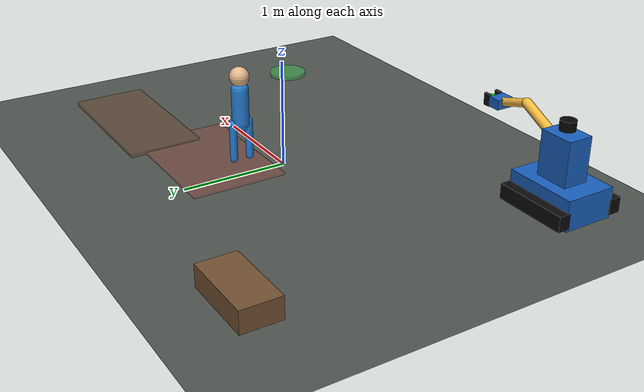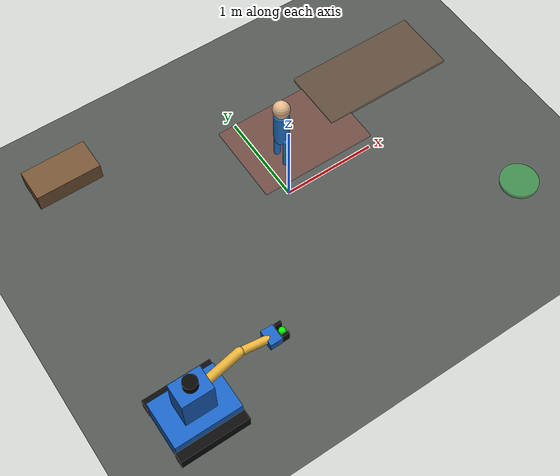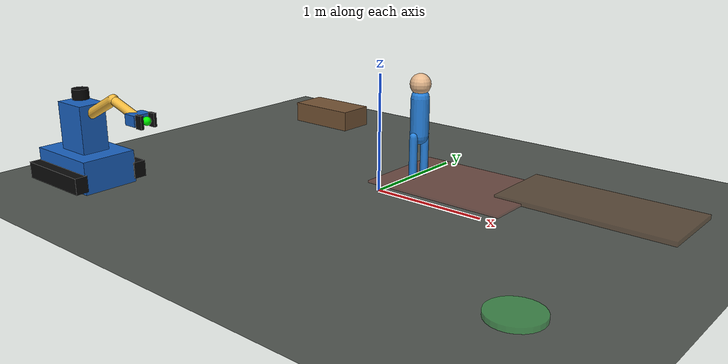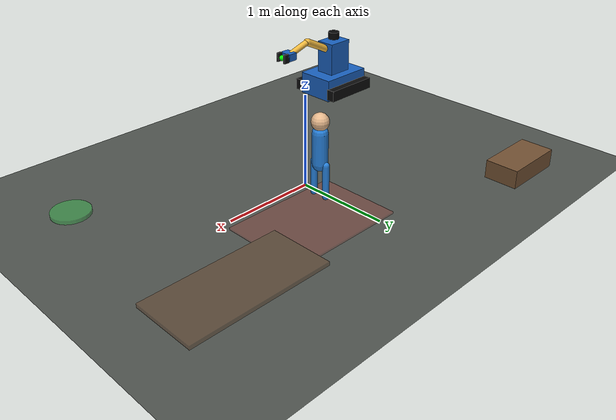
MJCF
<mujoco model="construction_site_mobile_manipulator">
  <option timestep="0.02" gravity="0 0 -9.81" integrator="RK4"/>
  <visual>
    <global azimuth="135" elevation="-25" offwidth="1280" offheight="720"/>
  </visual>
  <compiler angle="radian"/>
  <default>
    <geom friction="1.0 0.08 0.02" solref="0.01 1"/>
    <joint damping="1.5" armature="0.03"/>
  </default>
  <asset>
    <texture name="grid" type="2d" builtin="checker" rgb1="0.28 0.30 0.28" rgb2="0.34 0.36 0.34" width="512" height="512"/>
    <material name="floor_mat" texture="grid" texrepeat="8 8" reflectance="0.05"/>
    <material name="robot_mat" rgba="0.1 0.38 0.75 1"/>
    <material name="cargo_mat" rgba="0.85 0.55 0.18 1"/>
    <material name="human_zone_mat" rgba="0.85 0.18 0.12 0.22"/>
    <material name="arm_mat" rgba="0.94 0.72 0.24 1"/>
    <material name="rubber_mat" rgba="0.04 0.04 0.04 1"/>
    <material name="human_mat" rgba="0.15 0.5 0.85 1"/>
  </asset>

  <worldbody>
    <geom name="floor" type="plane" size="4 4 0.1" material="floor_mat"/>
    <light name="key" pos="0 -3 5" dir="0 0 -1" diffuse="0.8 0.8 0.8"/>
    <camera name="site_overview" pos="0 -5 3.2" xyaxes="1 0 0 0 0.55 0.83"/>

    <body name="robot" pos="-2 -1.5 0.18">
      <freejoint name="robot_free"/>
      <geom name="mobile_base" type="box" size="0.34 0.24 0.14" material="robot_mat" mass="18"/>
      <geom name="left_track" type="box" pos="0 0.28 -0.04" size="0.35 0.055 0.07" material="rubber_mat" mass="2"/>
      <geom name="right_track" type="box" pos="0 -0.28 -0.04" size="0.35 0.055 0.07" material="rubber_mat" mass="2"/>
      <geom name="torso" type="box" pos="0 0 0.33" size="0.16 0.12 0.22" material="robot_mat" mass="8"/>
      <geom name="head_lidar" type="cylinder" pos="0 0 0.62" size="0.07 0.045" rgba="0.02 0.02 0.02 1" mass="1"/>
      <site name="robot_goal" pos="0 0 0.35" size="0.04" rgba="0.1 0.9 0.25 1"/>

      <body name="boom" pos="0.12 0 0.46">
        <joint name="shoulder" type="hinge" axis="0 1 0" range="-1.1 1.0" limited="true"/>
        <geom name="upper_arm" type="capsule" fromto="0 0 0 0.36 0 0.18" size="0.045" material="arm_mat" mass="3"/>
        <body name="forearm" pos="0.36 0 0.18">
          <joint name="elbow" type="hinge" axis="0 1 0" range="-1.8 0.5" limited="true"/>
          <geom name="lower_arm" type="capsule" fromto="0 0 0 0.32 0 -0.1" size="0.038" material="arm_mat" mass="2"/>
          <body name="wrist" pos="0.32 0 -0.1">
            <joint name="wrist" type="hinge" axis="0 1 0" range="-1.2 1.2" limited="true"/>
            <geom name="wrist_block" type="box" size="0.06 0.08 0.045" material="robot_mat" mass="1"/>
            <site name="grip_site" pos="0.11 0 0" size="0.035" rgba="0 1 0 1"/>
            <body name="left_finger" pos="0.1 0.06 0">
              <joint name="left_finger" type="slide" axis="0 -1 0" range="0 0.045" limited="true"/>
              <geom name="left_finger_pad" type="box" size="0.035 0.012 0.055" material="rubber_mat" mass="0.2"/>
            </body>
            <body name="right_finger" pos="0.1 -0.06 0">
              <joint name="right_finger" type="slide" axis="0 1 0" range="0 0.045" limited="true"/>
              <geom name="right_finger_pad" type="box" size="0.035 0.012 0.055" material="rubber_mat" mass="0.2"/>
            </body>
          </body>
        </body>
      </body>
    </body>

    <body name="cargo_block" pos="-2.15 -1.5 0.13">
      <freejoint name="cargo_free"/>
      <geom name="cargo_block_geom" type="box" size="0.16 0.11 0.09" material="cargo_mat" mass="4"/>
    </body>

    <body name="storage_marker" pos="-2 -1.5 0.02">
      <geom type="cylinder" size="0.22 0.02" rgba="0.25 0.65 0.95 0.45"/>
    </body>
    <body name="foundation_marker" pos="1.6 0.8 0.02">
      <geom type="box" size="0.75 0.35 0.02" rgba="0.45 0.28 0.16 0.45"/>
    </body>
    <body name="tool_bench_marker" pos="-1.8 1.4 0.1">
      <geom type="box" size="0.35 0.18 0.1" rgba="0.45 0.32 0.2 1"/>
    </body>
    <body name="inspection_marker" pos="2 -1.2 0.02">
      <geom type="cylinder" size="0.2 0.02" rgba="0.2 0.8 0.3 0.45"/>
    </body>

    <body name="human_zone" pos="0.45 0.55 0.01">
      <geom type="box" size="0.65 0.45 0.01" material="human_zone_mat" contype="0" conaffinity="0"/>
    </body>
    <body name="human_worker_1" pos="0.15 0.35 0.52">
      <geom name="worker_legs" type="capsule" fromto="0 -0.08 -0.42 0 -0.08 -0.08" size="0.035" material="human_mat" contype="0" conaffinity="0"/>
      <geom name="worker_legs_2" type="capsule" fromto="0 0.08 -0.42 0 0.08 -0.08" size="0.035" material="human_mat" contype="0" conaffinity="0"/>
      <geom name="worker_body" type="capsule" fromto="0 0 -0.08 0 0 0.24" size="0.08" material="human_mat" contype="0" conaffinity="0"/>
      <geom name="worker_head" type="sphere" pos="0 0 0.36" size="0.09" rgba="0.9 0.72 0.55 1" contype="0" conaffinity="0"/>
    </body>
  </worldbody>

  <actuator>
    <position name="shoulder_motor" joint="shoulder" kp="80" ctrlrange="-1.1 1.0"/>
    <position name="elbow_motor" joint="elbow" kp="70" ctrlrange="-1.8 0.5"/>
    <position name="wrist_motor" joint="wrist" kp="45" ctrlrange="-1.2 1.2"/>
    <position name="left_finger_motor" joint="left_finger" kp="30" ctrlrange="0 0.045"/>
    <position name="right_finger_motor" joint="right_finger" kp="30" ctrlrange="0 0.045"/>
  </actuator>
</mujoco>
